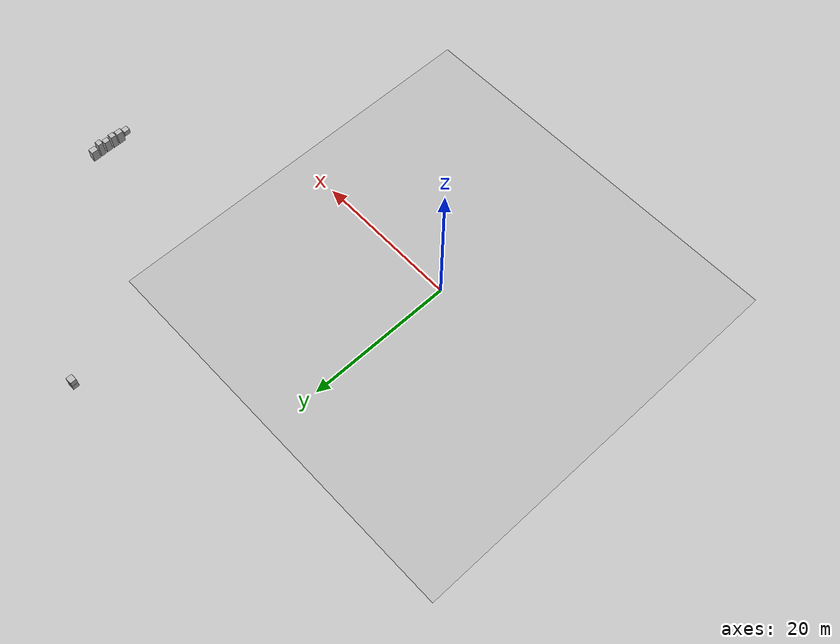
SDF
<sdf version="1.5">
 <world name="default">
  <model name="ground_plane">
   <static>true</static>
   <link name="link">
    <collision name="collision">
     <geometry><plane><normal>0 0 1</normal><size>250 250</size></plane></geometry>
     <surface><friction><ode><mu>1</mu><mu2>1</mu2></ode></friction></surface>
    </collision>
    <visual name="grass">
     <cast_shadows>false</cast_shadows>
     <geometry><mesh><uri>file://grass_plane/meshes/grass_plane.dae</uri></mesh></geometry>
    </visual>
   </link>
  </model>
  <model name="Cardboard_box_top_584">
   <link name="link_0">
    <pose>45 14 0.743053075202 0 0 0</pose>
    <inertial>
     <mass>1</mass>
     <inertia>
      <ixx>0.166667</ixx>
      <ixy>0</ixy>
      <ixz>0</ixz>
      <iyy>0.166667</iyy>
      <iyz>0</iyz>
      <izz>0.166667</izz>
     </inertia>
    </inertial>
    <collision name="collision">
     <geometry>
      <mesh>
       <uri>model://Cardboard_box/meshes/cardboard_box.dae</uri>
       <scale>1.88428107874 2.1049856559 1.85763268801</scale>
      </mesh>
     </geometry>
    </collision>
    <visual name="visual">
     <geometry>
      <mesh>
       <uri>model://Cardboard_box/meshes/cardboard_box.dae</uri>
       <scale>1.88428107874 2.1049856559 1.85763268801</scale>
      </mesh>
     </geometry>
    </visual>
   </link>
   <static>1</static>
  </model>
  <model name="Cardboard_box_585">
   <link name="link_0">
    <pose>45 15 0 0 0 0</pose>
    <inertial>
     <mass>1</mass>
     <inertia>
      <ixx>0.166667</ixx>
      <ixy>0</ixy>
      <ixz>0</ixz>
      <iyy>0.166667</iyy>
      <iyz>0</iyz>
      <izz>0.166667</izz>
     </inertia>
    </inertial>
    <collision name="collision">
     <geometry>
      <mesh>
       <uri>model://Cardboard_box/meshes/cardboard_box.dae</uri>
       <scale>1.74250299152 2.2671735861 4.63465345799</scale>
      </mesh>
     </geometry>
    </collision>
    <visual name="visual">
     <geometry>
      <mesh>
       <uri>model://Cardboard_box/meshes/cardboard_box.dae</uri>
       <scale>1.74250299152 2.2671735861 4.63465345799</scale>
      </mesh>
     </geometry>
    </visual>
   </link>
   <static>1</static>
  </model>
  <model name="Cardboard_box_586">
   <link name="link_0">
    <pose>45 16 0 0 0 0</pose>
    <inertial>
     <mass>1</mass>
     <inertia>
      <ixx>0.166667</ixx>
      <ixy>0</ixy>
      <ixz>0</ixz>
      <iyy>0.166667</iyy>
      <iyz>0</iyz>
      <izz>0.166667</izz>
     </inertia>
    </inertial>
    <collision name="collision">
     <geometry>
      <mesh>
       <uri>model://Cardboard_box/meshes/cardboard_box.dae</uri>
       <scale>1.82219731598 1.89033886471 5.03652716129</scale>
      </mesh>
     </geometry>
    </collision>
    <visual name="visual">
     <geometry>
      <mesh>
       <uri>model://Cardboard_box/meshes/cardboard_box.dae</uri>
       <scale>1.82219731598 1.89033886471 5.03652716129</scale>
      </mesh>
     </geometry>
    </visual>
   </link>
   <static>1</static>
  </model>
  <model name="Cardboard_box_587">
   <link name="link_0">
    <pose>45 17 0 0 0 0</pose>
    <inertial>
     <mass>1</mass>
     <inertia>
      <ixx>0.166667</ixx>
      <ixy>0</ixy>
      <ixz>0</ixz>
      <iyy>0.166667</iyy>
      <iyz>0</iyz>
      <izz>0.166667</izz>
     </inertia>
    </inertial>
    <collision name="collision">
     <geometry>
      <mesh>
       <uri>model://Cardboard_box/meshes/cardboard_box.dae</uri>
       <scale>1.73687731403 2.07006041911 4.58262976113</scale>
      </mesh>
     </geometry>
    </collision>
    <visual name="visual">
     <geometry>
      <mesh>
       <uri>model://Cardboard_box/meshes/cardboard_box.dae</uri>
       <scale>1.73687731403 2.07006041911 4.58262976113</scale>
      </mesh>
     </geometry>
    </visual>
   </link>
   <static>1</static>
  </model>
  <model name="Cardboard_box_588">
   <link name="link_0">
    <pose>45 18 0 0 0 0</pose>
    <inertial>
     <mass>1</mass>
     <inertia>
      <ixx>0.166667</ixx>
      <ixy>0</ixy>
      <ixz>0</ixz>
      <iyy>0.166667</iyy>
      <iyz>0</iyz>
      <izz>0.166667</izz>
     </inertia>
    </inertial>
    <collision name="collision">
     <geometry>
      <mesh>
       <uri>model://Cardboard_box/meshes/cardboard_box.dae</uri>
       <scale>1.93870790433 1.74755650234 5.59319158194</scale>
      </mesh>
     </geometry>
    </collision>
    <visual name="visual">
     <geometry>
      <mesh>
       <uri>model://Cardboard_box/meshes/cardboard_box.dae</uri>
       <scale>1.93870790433 1.74755650234 5.59319158194</scale>
      </mesh>
     </geometry>
    </visual>
   </link>
   <static>1</static>
  </model>
  <model name="Cardboard_box_589">
   <link name="link_0">
    <pose>45 19 0 0 0 0</pose>
    <inertial>
     <mass>1</mass>
     <inertia>
      <ixx>0.166667</ixx>
      <ixy>0</ixy>
      <ixz>0</ixz>
      <iyy>0.166667</iyy>
      <iyz>0</iyz>
      <izz>0.166667</izz>
     </inertia>
    </inertial>
    <collision name="collision">
     <geometry>
      <mesh>
       <uri>model://Cardboard_box/meshes/cardboard_box.dae</uri>
       <scale>2.00628725369 2.44856571479 4.15739409822</scale>
      </mesh>
     </geometry>
    </collision>
    <visual name="visual">
     <geometry>
      <mesh>
       <uri>model://Cardboard_box/meshes/cardboard_box.dae</uri>
       <scale>2.00628725369 2.44856571479 4.15739409822</scale>
      </mesh>
     </geometry>
    </visual>
   </link>
   <static>1</static>
  </model>
  <model name="Cardboard_box_590">
   <link name="link_0">
    <pose>20 40 0 0 0 0</pose>
    <inertial>
     <mass>1</mass>
     <inertia>
      <ixx>0.166667</ixx>
      <ixy>0</ixy>
      <ixz>0</ixz>
      <iyy>0.166667</iyy>
      <iyz>0</iyz>
      <izz>0.166667</izz>
     </inertia>
    </inertial>
    <collision name="collision">
     <geometry>
      <mesh>
       <uri>model://Cardboard_box/meshes/cardboard_box.dae</uri>
       <scale>2.33681347803 2.05099944346 2.05377234407</scale>
      </mesh>
     </geometry>
    </collision>
    <visual name="visual">
     <geometry>
      <mesh>
       <uri>model://Cardboard_box/meshes/cardboard_box.dae</uri>
       <scale>2.33681347803 2.05099944346 2.05377234407</scale>
      </mesh>
     </geometry>
    </visual>
   </link>
   <static>1</static>
  </model>
  <model name="Cardboard_box_top_590">
   <link name="link_0">
    <pose>20 40 0.821508937629 0 0 0</pose>
    <inertial>
     <mass>1</mass>
     <inertia>
      <ixx>0.166667</ixx>
      <ixy>0</ixy>
      <ixz>0</ixz>
      <iyy>0.166667</iyy>
      <iyz>0</iyz>
      <izz>0.166667</izz>
     </inertia>
    </inertial>
    <collision name="collision">
     <geometry>
      <mesh>
       <uri>model://Cardboard_box/meshes/cardboard_box.dae</uri>
       <scale>2.33681347803 2.05099944346 2.05377234407</scale>
      </mesh>
     </geometry>
    </collision>
    <visual name="visual">
     <geometry>
      <mesh>
       <uri>model://Cardboard_box/meshes/cardboard_box.dae</uri>
       <scale>2.33681347803 2.05099944346 2.05377234407</scale>
      </mesh>
     </geometry>
    </visual>
   </link>
   <static>1</static>
  </model>
 </world>
</sdf>
